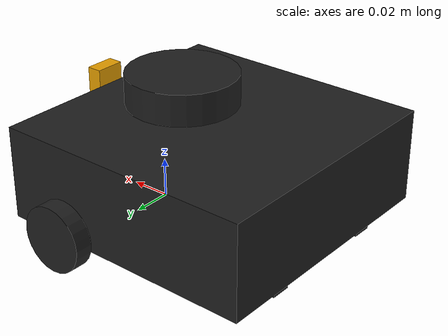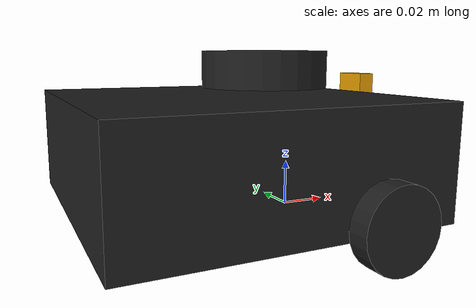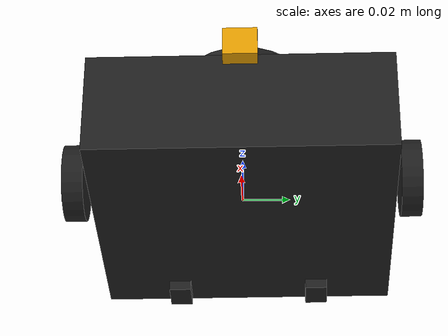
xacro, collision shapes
<?xml version="1.0" ?>
<robot name="turtlebot3_waffle_pi" xmlns:xacro="http://ros.org/wiki/xacro">
  <xacro:include filename="$(find aruco_detection)/urdf/common_properties.xacro"/>
  <xacro:include filename="$(find aruco_detection)/urdf/turtlebot3_waffle_pi.gazebo.xacro"/>

  <link name="base_footprint"/>

  <joint name="base_joint" type="fixed">
    <parent link="base_footprint"/>
    <child link="base_link" />
    <origin xyz="0 0 0.005" rpy="0 0 0"/>
  </joint>

  <link name="base_link">
    <visual>
      <origin xyz="-0.032 0 0.0" rpy="0 0 0"/>
      <geometry>
        <mesh filename="package://aruco_detection/meshes/bases/waffle_pi_base.stl" scale="0.0005 0.0005 0.0005"/>
      </geometry>
      <material name="light_black"/>
    </visual>

    <collision>
      <origin xyz="-0.032 0 0.0235" rpy="0 0 0"/>
      <geometry>
        <box size="0.133 0.133 0.047"/>
      </geometry>
    </collision>

    <inertial>
      <origin xyz="0 0 0" rpy="0 0 0"/>
      <mass value="1.3729096e+00"/>
      <inertia ixx="8.7002718e-03" ixy="-4.7576583e-05" ixz="1.1160499e-04"
               iyy="8.6195418e-03" iyz="-3.5422299e-06"
               izz="1.4612727e-02" />
    </inertial>
  </link>

  <joint name="wheel_left_joint" type="continuous">
    <parent link="base_link"/>
    <child link="wheel_left_link"/>
    <origin xyz="0.0 0.072 0.0050" rpy="-1.57 0 0"/>
    <axis xyz="0 0 1"/>
  </joint>

  <link name="wheel_left_link">
    <visual>
      <origin xyz="0 0 0" rpy="1.57 0 0"/>
      <geometry>
        <mesh filename="package://aruco_detection/meshes/wheels/left_tire.stl" scale="0.0005 0.0005 0.0005"/>
      </geometry>
      <material name="dark"/>
    </visual>

    <collision>
      <origin xyz="0 0 0" rpy="0 0 0"/>
      <geometry>
        <cylinder length="0.009" radius="0.0165"/>
      </geometry>
    </collision>

    <inertial>
      <origin xyz="0 0 0" />
      <mass value="2.8498940e-02" />
      <inertia ixx="1.1175580e-05" ixy="-4.2369783e-11" ixz="-5.9381719e-09"
               iyy="1.1192413e-05" iyz="-1.4400107e-11"
               izz="2.0712558e-05" />
      </inertial>
  </link>

  <joint name="wheel_right_joint" type="continuous">
    <parent link="base_link"/>
    <child link="wheel_right_link"/>
    <origin xyz="0.0 -0.072 0.0050" rpy="-1.57 0 0"/>
    <axis xyz="0 0 1"/>
  </joint>

  <link name="wheel_right_link">
    <visual>
      <origin xyz="0 0 0" rpy="1.57 0 0"/>
      <geometry>
        <mesh filename="package://aruco_detection/meshes/wheels/right_tire.stl" scale="0.0005 0.0005 0.0005"/>
      </geometry>
      <material name="dark"/>
    </visual>

    <collision>
      <origin xyz="0 0 0" rpy="0 0 0"/>
      <geometry>
        <cylinder length="0.009" radius="0.0165"/>
      </geometry>
    </collision>

    <inertial>
      <origin xyz="0 0 0" />
      <mass value="2.8498940e-02" />
      <inertia ixx="1.1175580e-05" ixy="-4.2369783e-11" ixz="-5.9381719e-09"
               iyy="1.1192413e-05" iyz="-1.4400107e-11"
               izz="2.0712558e-05" />
      </inertial>
  </link>

  <joint name="caster_back_right_joint" type="fixed">
    <parent link="base_link"/>
    <child link="caster_back_right_link"/>
    <origin xyz="-0.088 -0.032 -0.002" rpy="-1.57 0 0"/>
  </joint>

  <link name="caster_back_right_link">
    <collision>
      <origin xyz="0 0.0005 0" rpy="0 0 0"/>
      <geometry>
        <box size="0.015 0.0045 0.010"/>
      </geometry>
    </collision>

    <inertial>
      <origin xyz="0 0 0" />
      <mass value="0.0025" />
      <inertia ixx="0.001" ixy="0.0" ixz="0.0"
               iyy="0.001" iyz="0.0"
               izz="0.001" />
    </inertial>
  </link>

  <joint name="caster_back_left_joint" type="fixed">
    <parent link="base_link"/>
    <child link="caster_back_left_link"/>
    <origin xyz="-0.088 0.032 -0.002" rpy="-1.57 0 0"/>
  </joint>

  <link name="caster_back_left_link">
    <collision>
      <origin xyz="0 0.0005 0" rpy="0 0 0"/>
      <geometry>
        <box size="0.015 0.0045 0.010"/>
      </geometry>
    </collision>

    <inertial>
      <origin xyz="0 0 0" />
      <mass value="0.0025" />
      <inertia ixx="0.001" ixy="0.0" ixz="0.0"
               iyy="0.001" iyz="0.0"
               izz="0.001" />
    </inertial>
  </link>

  <joint name="imu_joint" type="fixed">
    <parent link="base_link"/>
    <child link="imu_link"/>
    <origin xyz="0.0 0 0.034" rpy="0 0 0"/>
  </joint>

  <link name="imu_link"/>

  <joint name="scan_joint" type="fixed">
    <parent link="base_link"/>
    <child link="base_scan"/>
    <origin xyz="-0.020 0 0.061" rpy="0 0 0"/>
  </joint>

  <link name="base_scan">
    <visual>
      <origin xyz="0 0 0.0" rpy="0 0 0"/>
      <geometry>
        <mesh filename="package://aruco_detection/meshes/sensors/lds.stl" scale="0.0005 0.0005 0.0005"/>
      </geometry>
      <material name="dark"/>
    </visual>

    <collision>
      <origin xyz="0.0075 0 -0.00325" rpy="0 0 0"/>
      <geometry>
        <cylinder length="0.0157" radius="0.0275"/>
      </geometry>
    </collision>

    <inertial>
      <mass value="0.080" />
      <origin xyz="0 0 0" />
      <inertia ixx="0.001" ixy="0.0" ixz="0.0"
               iyy="0.001" iyz="0.0"
               izz="0.001" />
    </inertial>
  </link>

  <joint name="camera_joint" type="fixed">
    <origin xyz="0.0365 -0.0055 0.042" rpy="0 0 0"/>
    <parent link="base_link"/>
    <child link="camera_link"/>
  </joint>

  <link name="camera_link">
    <collision>
      <origin xyz="0.0025 0.0055 0.0065" rpy="0 0 0"/>
      <geometry>
        <box size="0.0075 0.015 0.0135"/>
      </geometry>
    </collision>
  </link>

  <joint name="camera_rgb_joint" type="fixed">
    <origin xyz="0.0015 0.0055 0.0045" rpy="0 0 0"/>
    <parent link="camera_link"/>
    <child link="camera_rgb_frame"/>
  </joint>
  <link name="camera_rgb_frame"/>

  <joint name="camera_rgb_optical_joint" type="fixed">
    <origin xyz="0 0 0" rpy="-1.57 0 -1.57"/>
    <parent link="camera_rgb_frame"/>
    <child link="camera_rgb_optical_frame"/>
  </joint>
  <link name="camera_rgb_optical_frame"/>

</robot>
